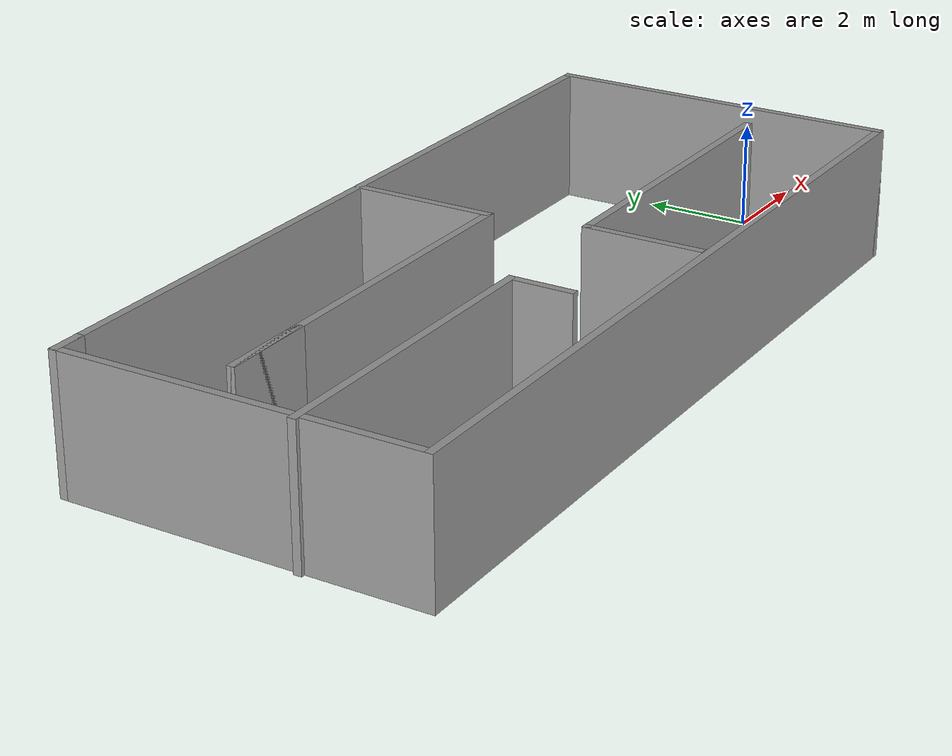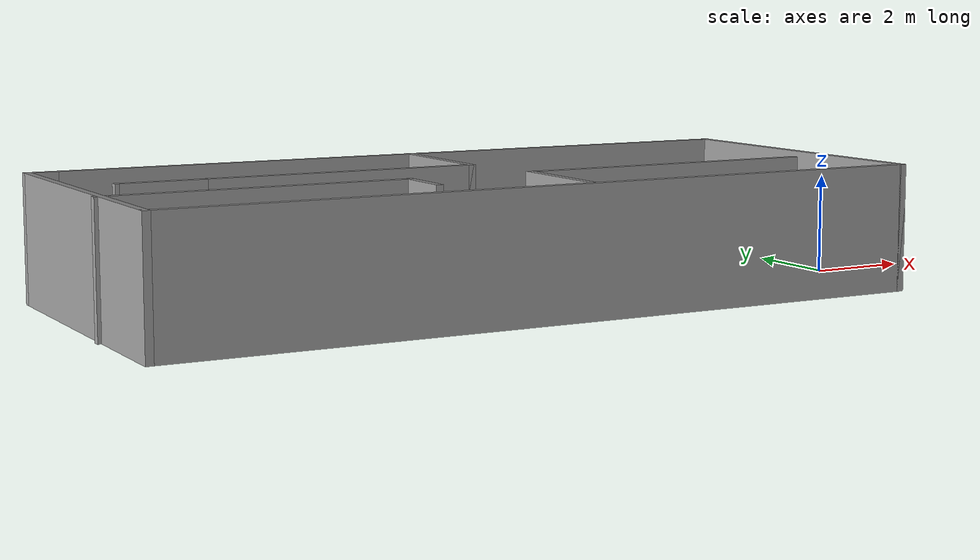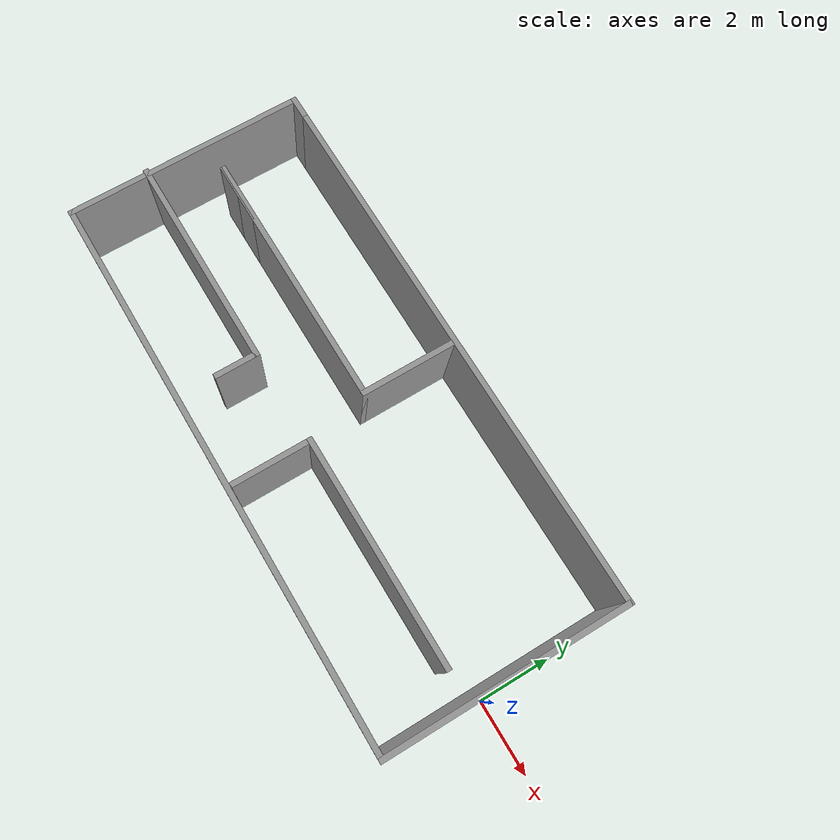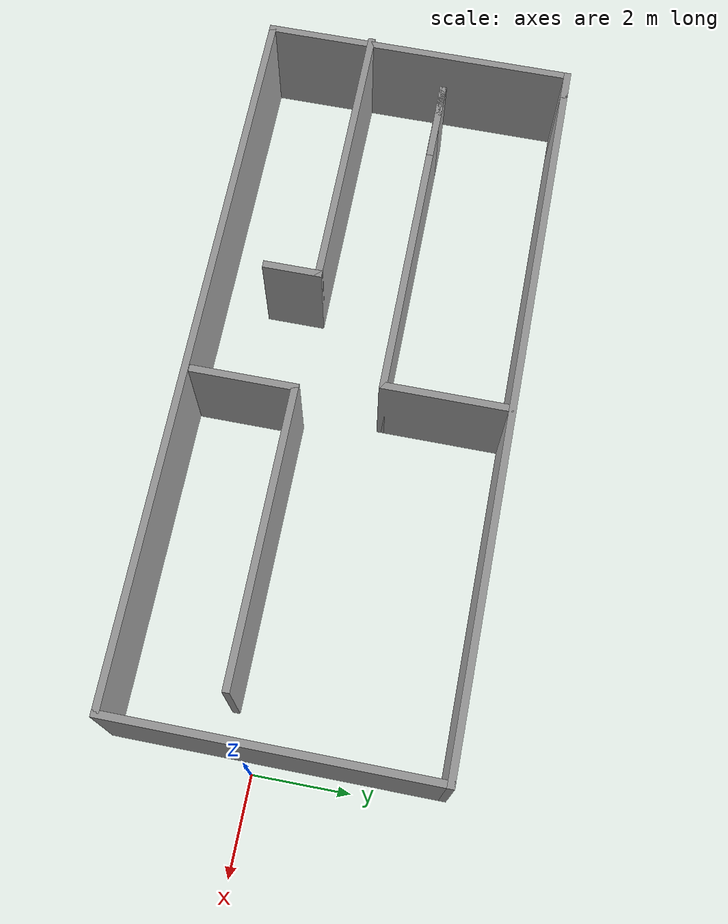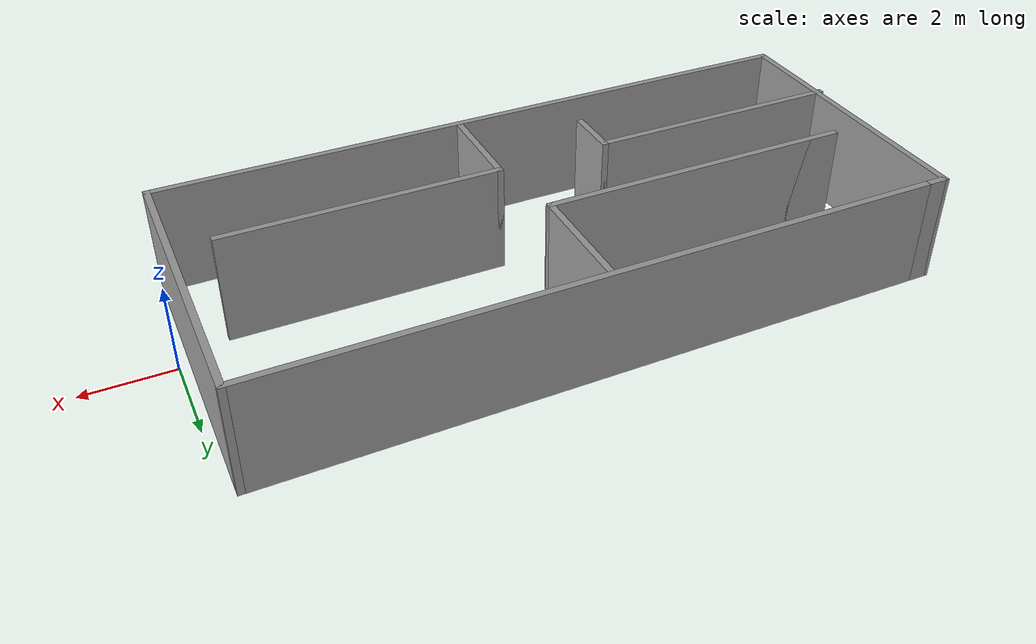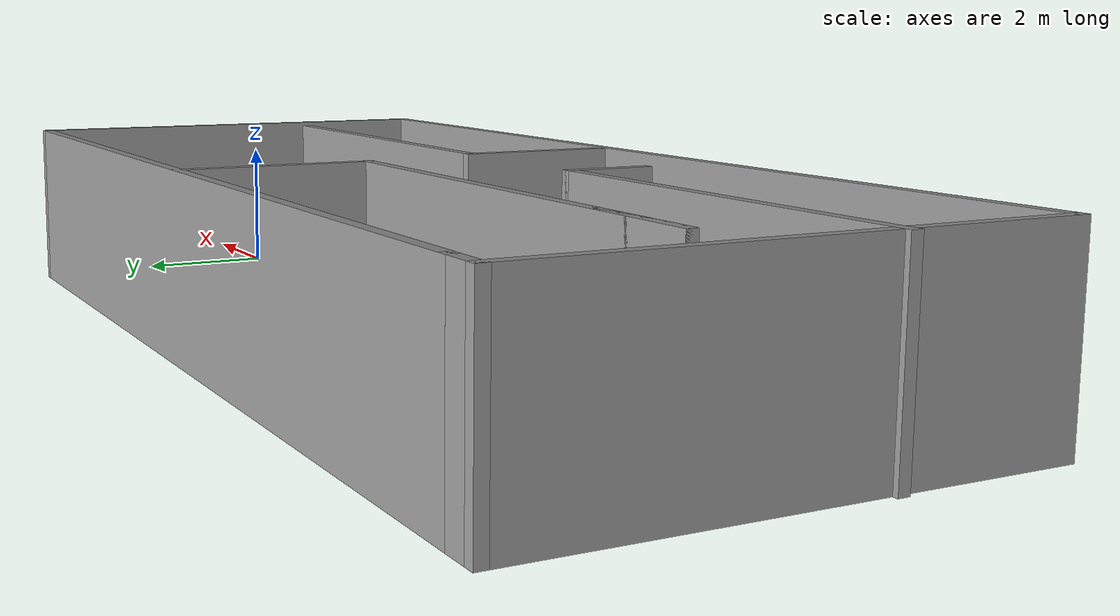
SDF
<?xml version='1.0'?>
<sdf version='1.7'>
  <model name='room'>
    <pose>-7.89391 0.491741 0 0 -0 0</pose>
    <link name='Wall_10'>
      <collision name='Wall_10_Collision'>
        <geometry>
          <box>
            <size>2.75 0.15 2.5</size>
          </box>
        </geometry>
        <pose>0 0 1.25 0 -0 0</pose>
      </collision>
      <visual name='Wall_10_Visual'>
        <pose>0 0 1.25 0 -0 0</pose>
        <geometry>
          <box>
            <size>2.75 0.15 2.5</size>
          </box>
        </geometry>
        <material>
          <script>
            <uri>file://media/materials/scripts/gazebo.material</uri>
            <name>Gazebo/Grey</name>
          </script>
          <ambient>1 1 1 1</ambient>
        </material>
        <meta>
          <layer>0</layer>
        </meta>
      </visual>
      <pose>0.228345 1.98199 0 0 -0 1.5708</pose>
    </link>
    <link name='Wall_12'>
      <collision name='Wall_12_Collision'>
        <geometry>
          <box>
            <size>6 0.15 2.5</size>
          </box>
        </geometry>
        <pose>0 0 1.25 0 -0 0</pose>
      </collision>
      <visual name='Wall_12_Visual'>
        <pose>0 0 1.25 0 -0 0</pose>
        <geometry>
          <box>
            <size>6 0.15 2.5</size>
          </box>
        </geometry>
        <material>
          <script>
            <uri>file://media/materials/scripts/gazebo.material</uri>
            <name>Gazebo/Grey</name>
          </script>
          <ambient>1 1 1 1</ambient>
        </material>
        <meta>
          <layer>0</layer>
        </meta>
      </visual>
      <pose>-4.89391 -1.08694 0 0 -0 0</pose>
    </link>
    <link name='Wall_13'>
      <collision name='Wall_13_Collision'>
        <geometry>
          <box>
            <size>1.25 0.15 2.5</size>
          </box>
        </geometry>
        <pose>0 0 1.25 0 -0 0</pose>
      </collision>
      <visual name='Wall_13_Visual'>
        <pose>0 0 1.25 0 -0 0</pose>
        <geometry>
          <box>
            <size>1.25 0.15 2.5</size>
          </box>
        </geometry>
        <material>
          <script>
            <uri>file://media/materials/scripts/gazebo.material</uri>
            <name>Gazebo/Grey</name>
          </script>
          <ambient>1 1 1 1</ambient>
        </material>
        <meta>
          <layer>0</layer>
        </meta>
      </visual>
      <pose>-1.96891 -1.63694 0 0 -0 -1.5708</pose>
    </link>
    <link name='Wall_15'>
      <collision name='Wall_15_Collision'>
        <geometry>
          <box>
            <size>2.25 0.15 2.5</size>
          </box>
        </geometry>
        <pose>0 0 1.25 0 -0 0</pose>
      </collision>
      <visual name='Wall_15_Visual'>
        <pose>0 0 1.25 0 -0 0</pose>
        <geometry>
          <box>
            <size>2.25 0.15 2.5</size>
          </box>
        </geometry>
        <material>
          <script>
            <uri>file://media/materials/scripts/gazebo.material</uri>
            <name>Gazebo/Grey</name>
          </script>
          <ambient>1 1 1 1</ambient>
        </material>
        <meta>
          <layer>0</layer>
        </meta>
      </visual>
      <pose>0.601181 -2.08889 0 0 -0 1.5708</pose>
    </link>
    <link name='Wall_16'>
      <collision name='Wall_16_Collision'>
        <geometry>
          <box>
            <size>6.25 0.15 2.5</size>
          </box>
        </geometry>
        <pose>0 0 1.25 0 -0 0</pose>
      </collision>
      <visual name='Wall_16_Visual'>
        <pose>0 0 1.25 0 -0 0</pose>
        <geometry>
          <box>
            <size>6.25 0.15 2.5</size>
          </box>
        </geometry>
        <material>
          <script>
            <uri>file://media/materials/scripts/gazebo.material</uri>
            <name>Gazebo/Grey</name>
          </script>
          <ambient>1 1 1 1</ambient>
        </material>
        <meta>
          <layer>0</layer>
        </meta>
      </visual>
      <pose>3.65118 -1.03889 0 0 -0 0</pose>
    </link>
    <link name='Wall_2'>
      <collision name='Wall_2_Collision'>
        <geometry>
          <box>
            <size>6.75 0.15 2.5</size>
          </box>
        </geometry>
        <pose>0 0 1.25 0 -0 0</pose>
      </collision>
      <visual name='Wall_2_Visual'>
        <pose>0 0 1.25 0 -0 0</pose>
        <geometry>
          <box>
            <size>6.75 0.15 2.5</size>
          </box>
        </geometry>
        <material>
          <script>
            <uri>file://media/materials/scripts/gazebo.material</uri>
            <name>Gazebo/Grey</name>
          </script>
          <ambient>1 1 1 1</ambient>
        </material>
        <meta>
          <layer>0</layer>
        </meta>
      </visual>
      <pose>-7.74815 -0 0 0 -0 -1.5708</pose>
    </link>
    <link name='Wall_3'>
      <collision name='Wall_3_Collision'>
        <geometry>
          <box>
            <size>15.5 0.15 2.5</size>
          </box>
        </geometry>
        <pose>0 0 1.25 0 -0 0</pose>
      </collision>
      <visual name='Wall_3_Visual'>
        <pose>0 0 1.25 0 -0 0</pose>
        <geometry>
          <box>
            <size>15.5 0.15 2.5</size>
          </box>
        </geometry>
        <material>
          <script>
            <uri>file://media/materials/scripts/gazebo.material</uri>
            <name>Gazebo/Grey</name>
          </script>
          <ambient>1 1 1 1</ambient>
        </material>
        <meta>
          <layer>0</layer>
        </meta>
      </visual>
      <pose>-0.073152 -3.3 0 0 -0 0</pose>
    </link>
    <link name='Wall_4'>
      <collision name='Wall_4_Collision'>
        <geometry>
          <box>
            <size>6.75 0.15 2.5</size>
          </box>
        </geometry>
        <pose>0 0 1.25 0 -0 0</pose>
      </collision>
      <visual name='Wall_4_Visual'>
        <pose>0 0 1.25 0 -0 0</pose>
        <geometry>
          <box>
            <size>6.75 0.15 2.5</size>
          </box>
        </geometry>
        <material>
          <script>
            <uri>file://media/materials/scripts/gazebo.material</uri>
            <name>Gazebo/Grey</name>
          </script>
          <ambient>1 1 1 1</ambient>
        </material>
        <meta>
          <layer>0</layer>
        </meta>
      </visual>
      <pose>7.60185 -0 0 0 -0 1.5708</pose>
    </link>
    <link name='Wall_5'>
      <collision name='Wall_5_Collision'>
        <geometry>
          <box>
            <size>15 0.15 2.5</size>
          </box>
        </geometry>
        <pose>0 0 1.25 0 -0 0</pose>
      </collision>
      <visual name='Wall_5_Visual'>
        <pose>0 0 1.25 0 -0 0</pose>
        <geometry>
          <box>
            <size>15 0.15 2.5</size>
          </box>
        </geometry>
        <material>
          <script>
            <uri>file://media/materials/scripts/gazebo.material</uri>
            <name>Gazebo/Grey</name>
          </script>
          <ambient>1 1 1 1</ambient>
        </material>
        <meta>
          <layer>0</layer>
        </meta>
      </visual>
      <pose>0.176848 3.3 0 0 -0 3.14159</pose>
    </link>
    <link name='Wall_6'>
      <collision name='Wall_6_Collision'>
        <geometry>
          <box>
            <size>0.65 0.15 2.5</size>
          </box>
        </geometry>
        <pose>0 0 1.25 0 -0 0</pose>
      </collision>
      <visual name='Wall_6_Visual'>
        <pose>0 0 1.25 0 -0 0</pose>
        <geometry>
          <box>
            <size>0.65 0.15 2.5</size>
          </box>
        </geometry>
        <material>
          <script>
            <uri>file://media/materials/scripts/gazebo.material</uri>
            <name>Gazebo/Grey</name>
          </script>
          <ambient>1 1 1 1</ambient>
        </material>
        <meta>
          <layer>0</layer>
        </meta>
      </visual>
      <pose>-7.49815 3.3 0 0 -0 -3.14159</pose>
    </link>
    <link name='Wall_8'>
      <collision name='Wall_8_Collision'>
        <geometry>
          <box>
            <size>1.75 0.15 2.5</size>
          </box>
        </geometry>
        <pose>0 0 1.25 0 -0 0</pose>
      </collision>
      <visual name='Wall_8_Visual'>
        <pose>0 0 1.25 0 -0 0</pose>
        <geometry>
          <box>
            <size>1.75 0.15 2.5</size>
          </box>
        </geometry>
        <material>
          <script>
            <uri>file://media/materials/scripts/gazebo.material</uri>
            <name>Gazebo/Grey</name>
          </script>
          <ambient>1 1 1 1</ambient>
        </material>
        <meta>
          <layer>0</layer>
        </meta>
      </visual>
      <pose>-6.07165 0.681989 0 0 -0 3.14159</pose>
    </link>
    <link name='Wall_9'>
      <collision name='Wall_9_Collision'>
        <geometry>
          <box>
            <size>7.25 0.15 2.5</size>
          </box>
        </geometry>
        <pose>0 0 1.25 0 -0 0</pose>
      </collision>
      <visual name='Wall_9_Visual'>
        <pose>0 0 1.25 0 -0 0</pose>
        <geometry>
          <box>
            <size>7.25 0.15 2.5</size>
          </box>
        </geometry>
        <material>
          <script>
            <uri>file://media/materials/scripts/gazebo.material</uri>
            <name>Gazebo/Grey</name>
          </script>
          <ambient>1 1 1 1</ambient>
        </material>
        <meta>
          <layer>0</layer>
        </meta>
      </visual>
      <pose>-3.32165 0.681989 0 0 -0 0</pose>
    </link>
    <static>1</static>
  </model>
</sdf>
